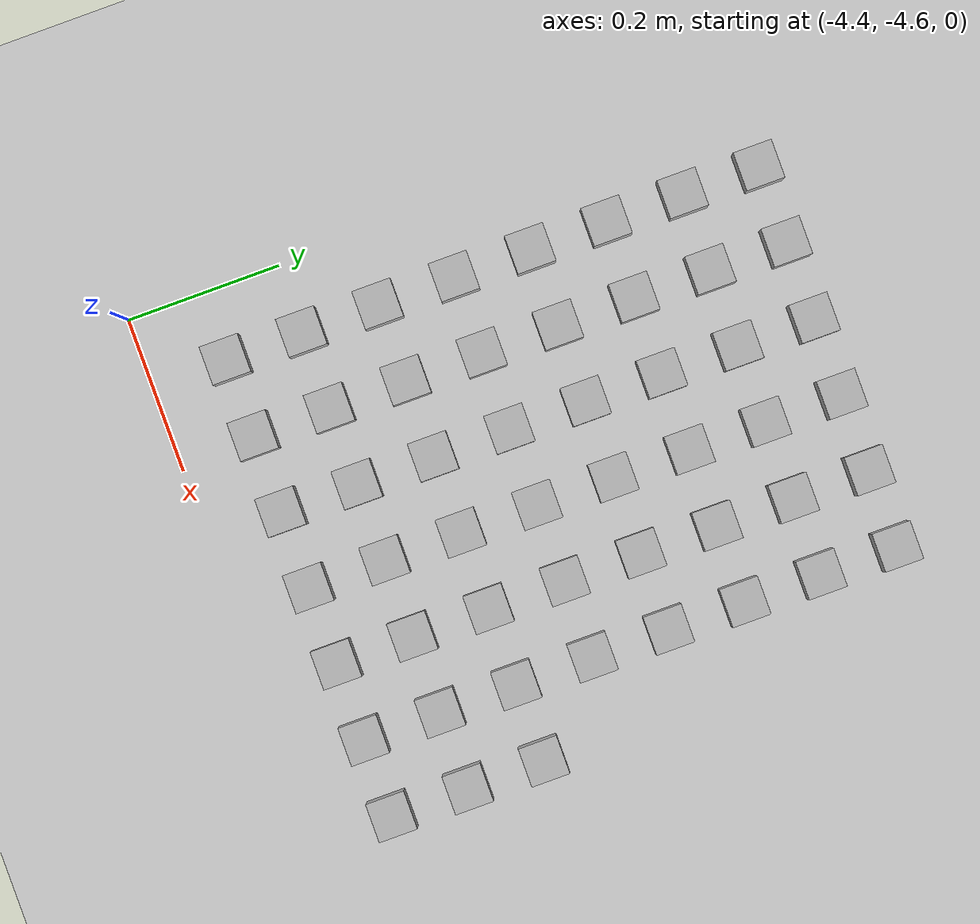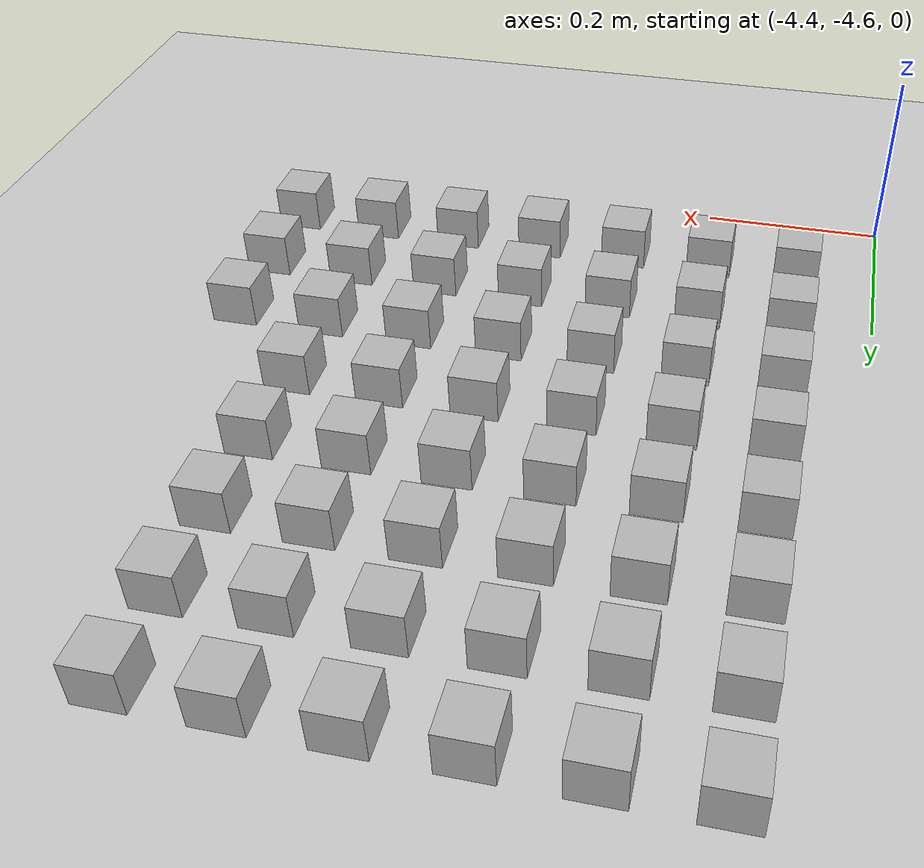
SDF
<sdf version="1.4">
 <world name="default">
  <model name="ground_plane">
   <static>1</static>
   <link name="link">
    <collision name="collision">
     <geometry><plane><normal>0 0 1</normal><size>100 100</size></plane></geometry>
     <surface><friction><ode><mu>100</mu><mu2>50</mu2></ode></friction></surface>
    </collision>
    <visual name="visual">
     <cast_shadows>0</cast_shadows>
     <geometry><plane><normal>0 0 1</normal><size>100 100</size></plane></geometry>
     <material>
      <script><uri>file://media/materials/scripts/gazebo.material</uri><name>Gazebo/Grey</name></script>
     </material>
    </visual>
    <velocity_decay><linear>0</linear><angular>0</angular></velocity_decay>
   </link>
  </model>
  <model name="at64">
   <static>0</static>
   <link name="link">
    <inertial>
     <mass>0.01</mass>
     <inertia><ixx>4e-05</ixx><ixy>0</ixy><ixz>0</ixz><iyy>4e-05</iyy><iyz>0</iyz><izz>4e-05</izz></inertia>
    </inertial>
    <visual name="visual">
     <transparency>0.1</transparency>
     <geometry><box><size>0.05 0.05 0.05</size></box></geometry>
     <material>
      <script>
       <uri>model://at0/materials/scripts</uri>
       <uri>model://at0/materials/textures</uri>
       <name>at0/Diffuse</name>
      </script>
     </material>
    </visual>
    <collision name="collision">
     <geometry><box><size>0.05 0.05 0.05</size></box></geometry>
     <surface><friction><ode><mu>0.8</mu><mu2>0.7</mu2></ode></friction></surface>
    </collision>
    <velocity_decay><linear>0</linear><angular>0</angular></velocity_decay>
   </link>
   <pose>-4.31043 -4.50066 0.024997 2.9e-05 2.9e-05 4e-06</pose>
  </model>
  <model name="at65">
   <static>0</static>
   <link name="link">
    <inertial>
     <mass>0.01</mass>
     <inertia><ixx>4e-05</ixx><ixy>0</ixy><ixz>0</ixz><iyy>4e-05</iyy><iyz>0</iyz><izz>4e-05</izz></inertia>
    </inertial>
    <visual name="visual">
     <transparency>0.1</transparency>
     <geometry><box><size>0.05 0.05 0.05</size></box></geometry>
     <material>
      <script>
       <uri>model://at0/materials/scripts</uri>
       <uri>model://at0/materials/textures</uri>
       <name>at0/Diffuse</name>
      </script>
     </material>
    </visual>
    <collision name="collision">
     <geometry><box><size>0.05 0.05 0.05</size></box></geometry>
     <surface><friction><ode><mu>0.8</mu><mu2>0.7</mu2></ode></friction></surface>
    </collision>
    <velocity_decay><linear>0</linear><angular>0</angular></velocity_decay>
   </link>
   <pose>-4.21043 -4.50066 0.024997 2.9e-05 2.9e-05 4e-06</pose>
  </model>
  <model name="at66">
   <static>0</static>
   <link name="link">
    <inertial>
     <mass>0.01</mass>
     <inertia><ixx>4e-05</ixx><ixy>0</ixy><ixz>0</ixz><iyy>4e-05</iyy><iyz>0</iyz><izz>4e-05</izz></inertia>
    </inertial>
    <visual name="visual">
     <transparency>0.1</transparency>
     <geometry><box><size>0.05 0.05 0.05</size></box></geometry>
     <material>
      <script>
       <uri>model://at0/materials/scripts</uri>
       <uri>model://at0/materials/textures</uri>
       <name>at0/Diffuse</name>
      </script>
     </material>
    </visual>
    <collision name="collision">
     <geometry><box><size>0.05 0.05 0.05</size></box></geometry>
     <surface><friction><ode><mu>0.8</mu><mu2>0.7</mu2></ode></friction></surface>
    </collision>
    <velocity_decay><linear>0</linear><angular>0</angular></velocity_decay>
   </link>
   <pose>-4.11043 -4.50066 0.024993 -2.9e-05 -2.9e-05 4e-06</pose>
  </model>
  <model name="at67">
   <static>0</static>
   <link name="link">
    <inertial>
     <mass>0.01</mass>
     <inertia><ixx>4e-05</ixx><ixy>0</ixy><ixz>0</ixz><iyy>4e-05</iyy><iyz>0</iyz><izz>4e-05</izz></inertia>
    </inertial>
    <visual name="visual">
     <transparency>0.1</transparency>
     <geometry><box><size>0.05 0.05 0.05</size></box></geometry>
     <material>
      <script>
       <uri>model://at0/materials/scripts</uri>
       <uri>model://at0/materials/textures</uri>
       <name>at0/Diffuse</name>
      </script>
     </material>
    </visual>
    <collision name="collision">
     <geometry><box><size>0.05 0.05 0.05</size></box></geometry>
     <surface><friction><ode><mu>0.8</mu><mu2>0.7</mu2></ode></friction></surface>
    </collision>
    <velocity_decay><linear>0</linear><angular>0</angular></velocity_decay>
   </link>
   <pose>-4.01043 -4.50066 0.024997 2.9e-05 2.9e-05 4e-06</pose>
  </model>
  <model name="at68">
   <static>0</static>
   <link name="link">
    <inertial>
     <mass>0.01</mass>
     <inertia><ixx>4e-05</ixx><ixy>0</ixy><ixz>0</ixz><iyy>4e-05</iyy><iyz>0</iyz><izz>4e-05</izz></inertia>
    </inertial>
    <visual name="visual">
     <transparency>0.1</transparency>
     <geometry><box><size>0.05 0.05 0.05</size></box></geometry>
     <material>
      <script>
       <uri>model://at0/materials/scripts</uri>
       <uri>model://at0/materials/textures</uri>
       <name>at0/Diffuse</name>
      </script>
     </material>
    </visual>
    <collision name="collision">
     <geometry><box><size>0.05 0.05 0.05</size></box></geometry>
     <surface><friction><ode><mu>0.8</mu><mu2>0.7</mu2></ode></friction></surface>
    </collision>
    <velocity_decay><linear>0</linear><angular>0</angular></velocity_decay>
   </link>
   <pose>-3.91043 -4.50066 0.024997 2.9e-05 2.9e-05 4e-06</pose>
  </model>
  <model name="at69">
   <static>0</static>
   <link name="link">
    <inertial>
     <mass>0.01</mass>
     <inertia><ixx>4e-05</ixx><ixy>0</ixy><ixz>0</ixz><iyy>4e-05</iyy><iyz>0</iyz><izz>4e-05</izz></inertia>
    </inertial>
    <visual name="visual">
     <transparency>0.1</transparency>
     <geometry><box><size>0.05 0.05 0.05</size></box></geometry>
     <material>
      <script>
       <uri>model://at0/materials/scripts</uri>
       <uri>model://at0/materials/textures</uri>
       <name>at0/Diffuse</name>
      </script>
     </material>
    </visual>
    <collision name="collision">
     <geometry><box><size>0.05 0.05 0.05</size></box></geometry>
     <surface><friction><ode><mu>0.8</mu><mu2>0.7</mu2></ode></friction></surface>
    </collision>
    <velocity_decay><linear>0</linear><angular>0</angular></velocity_decay>
   </link>
   <pose>-3.81043 -4.50066 0.024993 -2.9e-05 -2.9e-05 4e-06</pose>
  </model>
  <model name="at70">
   <static>0</static>
   <link name="link">
    <inertial>
     <mass>0.01</mass>
     <inertia><ixx>4e-05</ixx><ixy>0</ixy><ixz>0</ixz><iyy>4e-05</iyy><iyz>0</iyz><izz>4e-05</izz></inertia>
    </inertial>
    <visual name="visual">
     <transparency>0.1</transparency>
     <geometry><box><size>0.05 0.05 0.05</size></box></geometry>
     <material>
      <script>
       <uri>model://at0/materials/scripts</uri>
       <uri>model://at0/materials/textures</uri>
       <name>at0/Diffuse</name>
      </script>
     </material>
    </visual>
    <collision name="collision">
     <geometry><box><size>0.05 0.05 0.05</size></box></geometry>
     <surface><friction><ode><mu>0.8</mu><mu2>0.7</mu2></ode></friction></surface>
    </collision>
    <velocity_decay><linear>0</linear><angular>0</angular></velocity_decay>
   </link>
   <pose>-3.71043 -4.50066 0.024993 -2.9e-05 -2.9e-05 4e-06</pose>
  </model>
  <model name="at72">
   <static>0</static>
   <link name="link">
    <inertial>
     <mass>0.01</mass>
     <inertia><ixx>4e-05</ixx><ixy>0</ixy><ixz>0</ixz><iyy>4e-05</iyy><iyz>0</iyz><izz>4e-05</izz></inertia>
    </inertial>
    <visual name="visual">
     <transparency>0.1</transparency>
     <geometry><box><size>0.05 0.05 0.05</size></box></geometry>
     <material>
      <script>
       <uri>model://at0/materials/scripts</uri>
       <uri>model://at0/materials/textures</uri>
       <name>at0/Diffuse</name>
      </script>
     </material>
    </visual>
    <collision name="collision">
     <geometry><box><size>0.05 0.05 0.05</size></box></geometry>
     <surface><friction><ode><mu>0.8</mu><mu2>0.7</mu2></ode></friction></surface>
    </collision>
    <velocity_decay><linear>0</linear><angular>0</angular></velocity_decay>
   </link>
   <pose>-4.31043 -4.40066 0.024993 -2.9e-05 -2.9e-05 4e-06</pose>
  </model>
  <model name="at73">
   <static>0</static>
   <link name="link">
    <inertial>
     <mass>0.01</mass>
     <inertia><ixx>4e-05</ixx><ixy>0</ixy><ixz>0</ixz><iyy>4e-05</iyy><iyz>0</iyz><izz>4e-05</izz></inertia>
    </inertial>
    <visual name="visual">
     <transparency>0.1</transparency>
     <geometry><box><size>0.05 0.05 0.05</size></box></geometry>
     <material>
      <script>
       <uri>model://at0/materials/scripts</uri>
       <uri>model://at0/materials/textures</uri>
       <name>at0/Diffuse</name>
      </script>
     </material>
    </visual>
    <collision name="collision">
     <geometry><box><size>0.05 0.05 0.05</size></box></geometry>
     <surface><friction><ode><mu>0.8</mu><mu2>0.7</mu2></ode></friction></surface>
    </collision>
    <velocity_decay><linear>0</linear><angular>0</angular></velocity_decay>
   </link>
   <pose>-4.21043 -4.40066 0.024997 2.9e-05 2.9e-05 4e-06</pose>
  </model>
  <model name="at74">
   <static>0</static>
   <link name="link">
    <inertial>
     <mass>0.01</mass>
     <inertia><ixx>4e-05</ixx><ixy>0</ixy><ixz>0</ixz><iyy>4e-05</iyy><iyz>0</iyz><izz>4e-05</izz></inertia>
    </inertial>
    <visual name="visual">
     <transparency>0.1</transparency>
     <geometry><box><size>0.05 0.05 0.05</size></box></geometry>
     <material>
      <script>
       <uri>model://at0/materials/scripts</uri>
       <uri>model://at0/materials/textures</uri>
       <name>at0/Diffuse</name>
      </script>
     </material>
    </visual>
    <collision name="collision">
     <geometry><box><size>0.05 0.05 0.05</size></box></geometry>
     <surface><friction><ode><mu>0.8</mu><mu2>0.7</mu2></ode></friction></surface>
    </collision>
    <velocity_decay><linear>0</linear><angular>0</angular></velocity_decay>
   </link>
   <pose>-4.11043 -4.40066 0.024993 -2.9e-05 -2.9e-05 4e-06</pose>
  </model>
  <model name="at75">
   <static>0</static>
   <link name="link">
    <inertial>
     <mass>0.01</mass>
     <inertia><ixx>4e-05</ixx><ixy>0</ixy><ixz>0</ixz><iyy>4e-05</iyy><iyz>0</iyz><izz>4e-05</izz></inertia>
    </inertial>
    <visual name="visual">
     <transparency>0.1</transparency>
     <geometry><box><size>0.05 0.05 0.05</size></box></geometry>
     <material>
      <script>
       <uri>model://at0/materials/scripts</uri>
       <uri>model://at0/materials/textures</uri>
       <name>at0/Diffuse</name>
      </script>
     </material>
    </visual>
    <collision name="collision">
     <geometry><box><size>0.05 0.05 0.05</size></box></geometry>
     <surface><friction><ode><mu>0.8</mu><mu2>0.7</mu2></ode></friction></surface>
    </collision>
    <velocity_decay><linear>0</linear><angular>0</angular></velocity_decay>
   </link>
   <pose>-4.01043 -4.40066 0.024993 -2.9e-05 -2.9e-05 3e-06</pose>
  </model>
  <model name="at76">
   <static>0</static>
   <link name="link">
    <inertial>
     <mass>0.01</mass>
     <inertia><ixx>4e-05</ixx><ixy>0</ixy><ixz>0</ixz><iyy>4e-05</iyy><iyz>0</iyz><izz>4e-05</izz></inertia>
    </inertial>
    <visual name="visual">
     <transparency>0.1</transparency>
     <geometry><box><size>0.05 0.05 0.05</size></box></geometry>
     <material>
      <script>
       <uri>model://at0/materials/scripts</uri>
       <uri>model://at0/materials/textures</uri>
       <name>at0/Diffuse</name>
      </script>
     </material>
    </visual>
    <collision name="collision">
     <geometry><box><size>0.05 0.05 0.05</size></box></geometry>
     <surface><friction><ode><mu>0.8</mu><mu2>0.7</mu2></ode></friction></surface>
    </collision>
    <velocity_decay><linear>0</linear><angular>0</angular></velocity_decay>
   </link>
   <pose>-3.91043 -4.40066 0.024993 -2.9e-05 -2.9e-05 3e-06</pose>
  </model>
  <model name="at77">
   <static>0</static>
   <link name="link">
    <inertial>
     <mass>0.01</mass>
     <inertia><ixx>4e-05</ixx><ixy>0</ixy><ixz>0</ixz><iyy>4e-05</iyy><iyz>0</iyz><izz>4e-05</izz></inertia>
    </inertial>
    <visual name="visual">
     <transparency>0.1</transparency>
     <geometry><box><size>0.05 0.05 0.05</size></box></geometry>
     <material>
      <script>
       <uri>model://at0/materials/scripts</uri>
       <uri>model://at0/materials/textures</uri>
       <name>at0/Diffuse</name>
      </script>
     </material>
    </visual>
    <collision name="collision">
     <geometry><box><size>0.05 0.05 0.05</size></box></geometry>
     <surface><friction><ode><mu>0.8</mu><mu2>0.7</mu2></ode></friction></surface>
    </collision>
    <velocity_decay><linear>0</linear><angular>0</angular></velocity_decay>
   </link>
   <pose>-3.81043 -4.40066 0.024997 2.9e-05 2.9e-05 3e-06</pose>
  </model>
  <model name="at78">
   <static>0</static>
   <link name="link">
    <inertial>
     <mass>0.01</mass>
     <inertia><ixx>4e-05</ixx><ixy>0</ixy><ixz>0</ixz><iyy>4e-05</iyy><iyz>0</iyz><izz>4e-05</izz></inertia>
    </inertial>
    <visual name="visual">
     <transparency>0.1</transparency>
     <geometry><box><size>0.05 0.05 0.05</size></box></geometry>
     <material>
      <script>
       <uri>model://at0/materials/scripts</uri>
       <uri>model://at0/materials/textures</uri>
       <name>at0/Diffuse</name>
      </script>
     </material>
    </visual>
    <collision name="collision">
     <geometry><box><size>0.05 0.05 0.05</size></box></geometry>
     <surface><friction><ode><mu>0.8</mu><mu2>0.7</mu2></ode></friction></surface>
    </collision>
    <velocity_decay><linear>0</linear><angular>0</angular></velocity_decay>
   </link>
   <pose>-3.71043 -4.40066 0.024997 2.9e-05 2.9e-05 3e-06</pose>
  </model>
  <model name="at80">
   <static>0</static>
   <link name="link">
    <inertial>
     <mass>0.01</mass>
     <inertia><ixx>4e-05</ixx><ixy>0</ixy><ixz>0</ixz><iyy>4e-05</iyy><iyz>0</iyz><izz>4e-05</izz></inertia>
    </inertial>
    <visual name="visual">
     <transparency>0.1</transparency>
     <geometry><box><size>0.05 0.05 0.05</size></box></geometry>
     <material>
      <script>
       <uri>model://at0/materials/scripts</uri>
       <uri>model://at0/materials/textures</uri>
       <name>at0/Diffuse</name>
      </script>
     </material>
    </visual>
    <collision name="collision">
     <geometry><box><size>0.05 0.05 0.05</size></box></geometry>
     <surface><friction><ode><mu>0.8</mu><mu2>0.7</mu2></ode></friction></surface>
    </collision>
    <velocity_decay><linear>0</linear><angular>0</angular></velocity_decay>
   </link>
   <pose>-4.31043 -4.30066 0.024997 2.9e-05 2.9e-05 3e-06</pose>
  </model>
  <model name="at81">
   <static>0</static>
   <link name="link">
    <inertial>
     <mass>0.01</mass>
     <inertia><ixx>4e-05</ixx><ixy>0</ixy><ixz>0</ixz><iyy>4e-05</iyy><iyz>0</iyz><izz>4e-05</izz></inertia>
    </inertial>
    <visual name="visual">
     <transparency>0.1</transparency>
     <geometry><box><size>0.05 0.05 0.05</size></box></geometry>
     <material>
      <script>
       <uri>model://at0/materials/scripts</uri>
       <uri>model://at0/materials/textures</uri>
       <name>at0/Diffuse</name>
      </script>
     </material>
    </visual>
    <collision name="collision">
     <geometry><box><size>0.05 0.05 0.05</size></box></geometry>
     <surface><friction><ode><mu>0.8</mu><mu2>0.7</mu2></ode></friction></surface>
    </collision>
    <velocity_decay><linear>0</linear><angular>0</angular></velocity_decay>
   </link>
   <pose>-4.21043 -4.30066 0.024993 -2.9e-05 -2.9e-05 3e-06</pose>
  </model>
  <model name="at82">
   <static>0</static>
   <link name="link">
    <inertial>
     <mass>0.01</mass>
     <inertia><ixx>4e-05</ixx><ixy>0</ixy><ixz>0</ixz><iyy>4e-05</iyy><iyz>0</iyz><izz>4e-05</izz></inertia>
    </inertial>
    <visual name="visual">
     <transparency>0.1</transparency>
     <geometry><box><size>0.05 0.05 0.05</size></box></geometry>
     <material>
      <script>
       <uri>model://at0/materials/scripts</uri>
       <uri>model://at0/materials/textures</uri>
       <name>at0/Diffuse</name>
      </script>
     </material>
    </visual>
    <collision name="collision">
     <geometry><box><size>0.05 0.05 0.05</size></box></geometry>
     <surface><friction><ode><mu>0.8</mu><mu2>0.7</mu2></ode></friction></surface>
    </collision>
    <velocity_decay><linear>0</linear><angular>0</angular></velocity_decay>
   </link>
   <pose>-4.11043 -4.30066 0.024997 2.9e-05 2.9e-05 3e-06</pose>
  </model>
  <model name="at83">
   <static>0</static>
   <link name="link">
    <inertial>
     <mass>0.01</mass>
     <inertia><ixx>4e-05</ixx><ixy>0</ixy><ixz>0</ixz><iyy>4e-05</iyy><iyz>0</iyz><izz>4e-05</izz></inertia>
    </inertial>
    <visual name="visual">
     <transparency>0.1</transparency>
     <geometry><box><size>0.05 0.05 0.05</size></box></geometry>
     <material>
      <script>
       <uri>model://at0/materials/scripts</uri>
       <uri>model://at0/materials/textures</uri>
       <name>at0/Diffuse</name>
      </script>
     </material>
    </visual>
    <collision name="collision">
     <geometry><box><size>0.05 0.05 0.05</size></box></geometry>
     <surface><friction><ode><mu>0.8</mu><mu2>0.7</mu2></ode></friction></surface>
    </collision>
    <velocity_decay><linear>0</linear><angular>0</angular></velocity_decay>
   </link>
   <pose>-4.01043 -4.30066 0.024997 2.9e-05 2.9e-05 3e-06</pose>
  </model>
  <model name="at84">
   <static>0</static>
   <link name="link">
    <inertial>
     <mass>0.01</mass>
     <inertia><ixx>4e-05</ixx><ixy>0</ixy><ixz>0</ixz><iyy>4e-05</iyy><iyz>0</iyz><izz>4e-05</izz></inertia>
    </inertial>
    <visual name="visual">
     <transparency>0.1</transparency>
     <geometry><box><size>0.05 0.05 0.05</size></box></geometry>
     <material>
      <script>
       <uri>model://at0/materials/scripts</uri>
       <uri>model://at0/materials/textures</uri>
       <name>at0/Diffuse</name>
      </script>
     </material>
    </visual>
    <collision name="collision">
     <geometry><box><size>0.05 0.05 0.05</size></box></geometry>
     <surface><friction><ode><mu>0.8</mu><mu2>0.7</mu2></ode></friction></surface>
    </collision>
    <velocity_decay><linear>0</linear><angular>0</angular></velocity_decay>
   </link>
   <pose>-3.91043 -4.30066 0.024997 2.9e-05 2.9e-05 3e-06</pose>
  </model>
  <model name="at85">
   <static>0</static>
   <link name="link">
    <inertial>
     <mass>0.01</mass>
     <inertia><ixx>4e-05</ixx><ixy>0</ixy><ixz>0</ixz><iyy>4e-05</iyy><iyz>0</iyz><izz>4e-05</izz></inertia>
    </inertial>
    <visual name="visual">
     <transparency>0.1</transparency>
     <geometry><box><size>0.05 0.05 0.05</size></box></geometry>
     <material>
      <script>
       <uri>model://at0/materials/scripts</uri>
       <uri>model://at0/materials/textures</uri>
       <name>at0/Diffuse</name>
      </script>
     </material>
    </visual>
    <collision name="collision">
     <geometry><box><size>0.05 0.05 0.05</size></box></geometry>
     <surface><friction><ode><mu>0.8</mu><mu2>0.7</mu2></ode></friction></surface>
    </collision>
    <velocity_decay><linear>0</linear><angular>0</angular></velocity_decay>
   </link>
   <pose>-3.81043 -4.30066 0.024993 -2.9e-05 -2.9e-05 3e-06</pose>
  </model>
  <model name="at86">
   <static>0</static>
   <link name="link">
    <inertial>
     <mass>0.01</mass>
     <inertia><ixx>4e-05</ixx><ixy>0</ixy><ixz>0</ixz><iyy>4e-05</iyy><iyz>0</iyz><izz>4e-05</izz></inertia>
    </inertial>
    <visual name="visual">
     <transparency>0.1</transparency>
     <geometry><box><size>0.05 0.05 0.05</size></box></geometry>
     <material>
      <script>
       <uri>model://at0/materials/scripts</uri>
       <uri>model://at0/materials/textures</uri>
       <name>at0/Diffuse</name>
      </script>
     </material>
    </visual>
    <collision name="collision">
     <geometry><box><size>0.05 0.05 0.05</size></box></geometry>
     <surface><friction><ode><mu>0.8</mu><mu2>0.7</mu2></ode></friction></surface>
    </collision>
    <velocity_decay><linear>0</linear><angular>0</angular></velocity_decay>
   </link>
   <pose>-3.71043 -4.30066 0.024993 -2.9e-05 -2.9e-05 3e-06</pose>
  </model>
  <model name="at88">
   <static>0</static>
   <link name="link">
    <inertial>
     <mass>0.01</mass>
     <inertia><ixx>4e-05</ixx><ixy>0</ixy><ixz>0</ixz><iyy>4e-05</iyy><iyz>0</iyz><izz>4e-05</izz></inertia>
    </inertial>
    <visual name="visual">
     <transparency>0.1</transparency>
     <geometry><box><size>0.05 0.05 0.05</size></box></geometry>
     <material>
      <script>
       <uri>model://at0/materials/scripts</uri>
       <uri>model://at0/materials/textures</uri>
       <name>at0/Diffuse</name>
      </script>
     </material>
    </visual>
    <collision name="collision">
     <geometry><box><size>0.05 0.05 0.05</size></box></geometry>
     <surface><friction><ode><mu>0.8</mu><mu2>0.7</mu2></ode></friction></surface>
    </collision>
    <velocity_decay><linear>0</linear><angular>0</angular></velocity_decay>
   </link>
   <pose>-4.31043 -4.20066 0.024993 -2.9e-05 -2.9e-05 3e-06</pose>
  </model>
  <model name="at89">
   <static>0</static>
   <link name="link">
    <inertial>
     <mass>0.01</mass>
     <inertia><ixx>4e-05</ixx><ixy>0</ixy><ixz>0</ixz><iyy>4e-05</iyy><iyz>0</iyz><izz>4e-05</izz></inertia>
    </inertial>
    <visual name="visual">
     <transparency>0.1</transparency>
     <geometry><box><size>0.05 0.05 0.05</size></box></geometry>
     <material>
      <script>
       <uri>model://at0/materials/scripts</uri>
       <uri>model://at0/materials/textures</uri>
       <name>at0/Diffuse</name>
      </script>
     </material>
    </visual>
    <collision name="collision">
     <geometry><box><size>0.05 0.05 0.05</size></box></geometry>
     <surface><friction><ode><mu>0.8</mu><mu2>0.7</mu2></ode></friction></surface>
    </collision>
    <velocity_decay><linear>0</linear><angular>0</angular></velocity_decay>
   </link>
   <pose>-4.21043 -4.20066 0.024997 2.9e-05 2.9e-05 3e-06</pose>
  </model>
  <model name="at90">
   <static>0</static>
   <link name="link">
    <inertial>
     <mass>0.01</mass>
     <inertia><ixx>4e-05</ixx><ixy>0</ixy><ixz>0</ixz><iyy>4e-05</iyy><iyz>0</iyz><izz>4e-05</izz></inertia>
    </inertial>
    <visual name="visual">
     <transparency>0.1</transparency>
     <geometry><box><size>0.05 0.05 0.05</size></box></geometry>
     <material>
      <script>
       <uri>model://at0/materials/scripts</uri>
       <uri>model://at0/materials/textures</uri>
       <name>at0/Diffuse</name>
      </script>
     </material>
    </visual>
    <collision name="collision">
     <geometry><box><size>0.05 0.05 0.05</size></box></geometry>
     <surface><friction><ode><mu>0.8</mu><mu2>0.7</mu2></ode></friction></surface>
    </collision>
    <velocity_decay><linear>0</linear><angular>0</angular></velocity_decay>
   </link>
   <pose>-4.11043 -4.20066 0.024997 2.9e-05 2.9e-05 3e-06</pose>
  </model>
  <model name="at91">
   <static>0</static>
   <link name="link">
    <inertial>
     <mass>0.01</mass>
     <inertia><ixx>4e-05</ixx><ixy>0</ixy><ixz>0</ixz><iyy>4e-05</iyy><iyz>0</iyz><izz>4e-05</izz></inertia>
    </inertial>
    <visual name="visual">
     <transparency>0.1</transparency>
     <geometry><box><size>0.05 0.05 0.05</size></box></geometry>
     <material>
      <script>
       <uri>model://at0/materials/scripts</uri>
       <uri>model://at0/materials/textures</uri>
       <name>at0/Diffuse</name>
      </script>
     </material>
    </visual>
    <collision name="collision">
     <geometry><box><size>0.05 0.05 0.05</size></box></geometry>
     <surface><friction><ode><mu>0.8</mu><mu2>0.7</mu2></ode></friction></surface>
    </collision>
    <velocity_decay><linear>0</linear><angular>0</angular></velocity_decay>
   </link>
   <pose>-4.01043 -4.20066 0.024997 2.9e-05 2.9e-05 3e-06</pose>
  </model>
  <model name="at92">
   <static>0</static>
   <link name="link">
    <inertial>
     <mass>0.01</mass>
     <inertia><ixx>4e-05</ixx><ixy>0</ixy><ixz>0</ixz><iyy>4e-05</iyy><iyz>0</iyz><izz>4e-05</izz></inertia>
    </inertial>
    <visual name="visual">
     <transparency>0.1</transparency>
     <geometry><box><size>0.05 0.05 0.05</size></box></geometry>
     <material>
      <script>
       <uri>model://at0/materials/scripts</uri>
       <uri>model://at0/materials/textures</uri>
       <name>at0/Diffuse</name>
      </script>
     </material>
    </visual>
    <collision name="collision">
     <geometry><box><size>0.05 0.05 0.05</size></box></geometry>
     <surface><friction><ode><mu>0.8</mu><mu2>0.7</mu2></ode></friction></surface>
    </collision>
    <velocity_decay><linear>0</linear><angular>0</angular></velocity_decay>
   </link>
   <pose>-3.91043 -4.20066 0.024993 -2.9e-05 -2.9e-05 3e-06</pose>
  </model>
  <model name="at93">
   <static>0</static>
   <link name="link">
    <inertial>
     <mass>0.01</mass>
     <inertia><ixx>4e-05</ixx><ixy>0</ixy><ixz>0</ixz><iyy>4e-05</iyy><iyz>0</iyz><izz>4e-05</izz></inertia>
    </inertial>
    <visual name="visual">
     <transparency>0.1</transparency>
     <geometry><box><size>0.05 0.05 0.05</size></box></geometry>
     <material>
      <script>
       <uri>model://at0/materials/scripts</uri>
       <uri>model://at0/materials/textures</uri>
       <name>at0/Diffuse</name>
      </script>
     </material>
    </visual>
    <collision name="collision">
     <geometry><box><size>0.05 0.05 0.05</size></box></geometry>
     <surface><friction><ode><mu>0.8</mu><mu2>0.7</mu2></ode></friction></surface>
    </collision>
    <velocity_decay><linear>0</linear><angular>0</angular></velocity_decay>
   </link>
   <pose>-3.81043 -4.20066 0.024997 2.9e-05 2.9e-05 3e-06</pose>
  </model>
  <model name="at96">
   <static>0</static>
   <link name="link">
    <inertial>
     <mass>0.01</mass>
     <inertia><ixx>4e-05</ixx><ixy>0</ixy><ixz>0</ixz><iyy>4e-05</iyy><iyz>0</iyz><izz>4e-05</izz></inertia>
    </inertial>
    <visual name="visual">
     <transparency>0.1</transparency>
     <geometry><box><size>0.05 0.05 0.05</size></box></geometry>
     <material>
      <script>
       <uri>model://at0/materials/scripts</uri>
       <uri>model://at0/materials/textures</uri>
       <name>at0/Diffuse</name>
      </script>
     </material>
    </visual>
    <collision name="collision">
     <geometry><box><size>0.05 0.05 0.05</size></box></geometry>
     <surface><friction><ode><mu>0.8</mu><mu2>0.7</mu2></ode></friction></surface>
    </collision>
    <velocity_decay><linear>0</linear><angular>0</angular></velocity_decay>
   </link>
   <pose>-4.31043 -4.10066 0.024993 -2.9e-05 -2.9e-05 3e-06</pose>
  </model>
  <model name="at97">
   <static>0</static>
   <link name="link">
    <inertial>
     <mass>0.01</mass>
     <inertia><ixx>4e-05</ixx><ixy>0</ixy><ixz>0</ixz><iyy>4e-05</iyy><iyz>0</iyz><izz>4e-05</izz></inertia>
    </inertial>
    <visual name="visual">
     <transparency>0.1</transparency>
     <geometry><box><size>0.05 0.05 0.05</size></box></geometry>
     <material>
      <script>
       <uri>model://at0/materials/scripts</uri>
       <uri>model://at0/materials/textures</uri>
       <name>at0/Diffuse</name>
      </script>
     </material>
    </visual>
    <collision name="collision">
     <geometry><box><size>0.05 0.05 0.05</size></box></geometry>
     <surface><friction><ode><mu>0.8</mu><mu2>0.7</mu2></ode></friction></surface>
    </collision>
    <velocity_decay><linear>0</linear><angular>0</angular></velocity_decay>
   </link>
   <pose>-4.21043 -4.10066 0.024997 2.9e-05 2.9e-05 3e-06</pose>
  </model>
  <model name="at98">
   <static>0</static>
   <link name="link">
    <inertial>
     <mass>0.01</mass>
     <inertia><ixx>4e-05</ixx><ixy>0</ixy><ixz>0</ixz><iyy>4e-05</iyy><iyz>0</iyz><izz>4e-05</izz></inertia>
    </inertial>
    <visual name="visual">
     <transparency>0.1</transparency>
     <geometry><box><size>0.05 0.05 0.05</size></box></geometry>
     <material>
      <script>
       <uri>model://at0/materials/scripts</uri>
       <uri>model://at0/materials/textures</uri>
       <name>at0/Diffuse</name>
      </script>
     </material>
    </visual>
    <collision name="collision">
     <geometry><box><size>0.05 0.05 0.05</size></box></geometry>
     <surface><friction><ode><mu>0.8</mu><mu2>0.7</mu2></ode></friction></surface>
    </collision>
    <velocity_decay><linear>0</linear><angular>0</angular></velocity_decay>
   </link>
   <pose>-4.11043 -4.10066 0.024997 2.9e-05 2.9e-05 3e-06</pose>
  </model>
  <model name="at99">
   <static>0</static>
   <link name="link">
    <inertial>
     <mass>0.01</mass>
     <inertia><ixx>4e-05</ixx><ixy>0</ixy><ixz>0</ixz><iyy>4e-05</iyy><iyz>0</iyz><izz>4e-05</izz></inertia>
    </inertial>
    <visual name="visual">
     <transparency>0.1</transparency>
     <geometry><box><size>0.05 0.05 0.05</size></box></geometry>
     <material>
      <script>
       <uri>model://at0/materials/scripts</uri>
       <uri>model://at0/materials/textures</uri>
       <name>at0/Diffuse</name>
      </script>
     </material>
    </visual>
    <collision name="collision">
     <geometry><box><size>0.05 0.05 0.05</size></box></geometry>
     <surface><friction><ode><mu>0.8</mu><mu2>0.7</mu2></ode></friction></surface>
    </collision>
    <velocity_decay><linear>0</linear><angular>0</angular></velocity_decay>
   </link>
   <pose>-4.01043 -4.10066 0.024997 2.9e-05 2.9e-05 3e-06</pose>
  </model>
  <model name="at100">
   <static>0</static>
   <link name="link">
    <inertial>
     <mass>0.01</mass>
     <inertia><ixx>4e-05</ixx><ixy>0</ixy><ixz>0</ixz><iyy>4e-05</iyy><iyz>0</iyz><izz>4e-05</izz></inertia>
    </inertial>
    <visual name="visual">
     <transparency>0.1</transparency>
     <geometry><box><size>0.05 0.05 0.05</size></box></geometry>
     <material>
      <script>
       <uri>model://at0/materials/scripts</uri>
       <uri>model://at0/materials/textures</uri>
       <name>at0/Diffuse</name>
      </script>
     </material>
    </visual>
    <collision name="collision">
     <geometry><box><size>0.05 0.05 0.05</size></box></geometry>
     <surface><friction><ode><mu>0.8</mu><mu2>0.7</mu2></ode></friction></surface>
    </collision>
    <velocity_decay><linear>0</linear><angular>0</angular></velocity_decay>
   </link>
   <pose>-3.91043 -4.10066 0.024997 2.9e-05 2.9e-05 3e-06</pose>
  </model>
  <model name="at101">
   <static>0</static>
   <link name="link">
    <inertial>
     <mass>0.01</mass>
     <inertia><ixx>4e-05</ixx><ixy>0</ixy><ixz>0</ixz><iyy>4e-05</iyy><iyz>0</iyz><izz>4e-05</izz></inertia>
    </inertial>
    <visual name="visual">
     <transparency>0.1</transparency>
     <geometry><box><size>0.05 0.05 0.05</size></box></geometry>
     <material>
      <script>
       <uri>model://at0/materials/scripts</uri>
       <uri>model://at0/materials/textures</uri>
       <name>at0/Diffuse</name>
      </script>
     </material>
    </visual>
    <collision name="collision">
     <geometry><box><size>0.05 0.05 0.05</size></box></geometry>
     <surface><friction><ode><mu>0.8</mu><mu2>0.7</mu2></ode></friction></surface>
    </collision>
    <velocity_decay><linear>0</linear><angular>0</angular></velocity_decay>
   </link>
   <pose>-3.81043 -4.10066 0.024993 -2.9e-05 -2.9e-05 3e-06</pose>
  </model>
  <model name="at104">
   <static>0</static>
   <link name="link">
    <inertial>
     <mass>0.01</mass>
     <inertia><ixx>4e-05</ixx><ixy>0</ixy><ixz>0</ixz><iyy>4e-05</iyy><iyz>0</iyz><izz>4e-05</izz></inertia>
    </inertial>
    <visual name="visual">
     <transparency>0.1</transparency>
     <geometry><box><size>0.05 0.05 0.05</size></box></geometry>
     <material>
      <script>
       <uri>model://at0/materials/scripts</uri>
       <uri>model://at0/materials/textures</uri>
       <name>at0/Diffuse</name>
      </script>
     </material>
    </visual>
    <collision name="collision">
     <geometry><box><size>0.05 0.05 0.05</size></box></geometry>
     <surface><friction><ode><mu>0.8</mu><mu2>0.7</mu2></ode></friction></surface>
    </collision>
    <velocity_decay><linear>0</linear><angular>0</angular></velocity_decay>
   </link>
   <pose>-4.31043 -4.00066 0.024997 2.9e-05 2.9e-05 3e-06</pose>
  </model>
  <model name="at105">
   <static>0</static>
   <link name="link">
    <inertial>
     <mass>0.01</mass>
     <inertia><ixx>4e-05</ixx><ixy>0</ixy><ixz>0</ixz><iyy>4e-05</iyy><iyz>0</iyz><izz>4e-05</izz></inertia>
    </inertial>
    <visual name="visual">
     <transparency>0.1</transparency>
     <geometry><box><size>0.05 0.05 0.05</size></box></geometry>
     <material>
      <script>
       <uri>model://at0/materials/scripts</uri>
       <uri>model://at0/materials/textures</uri>
       <name>at0/Diffuse</name>
      </script>
     </material>
    </visual>
    <collision name="collision">
     <geometry><box><size>0.05 0.05 0.05</size></box></geometry>
     <surface><friction><ode><mu>0.8</mu><mu2>0.7</mu2></ode></friction></surface>
    </collision>
    <velocity_decay><linear>0</linear><angular>0</angular></velocity_decay>
   </link>
   <pose>-4.21043 -4.00066 0.024993 -2.9e-05 -2.9e-05 3e-06</pose>
  </model>
  <model name="at106">
   <static>0</static>
   <link name="link">
    <inertial>
     <mass>0.01</mass>
     <inertia><ixx>4e-05</ixx><ixy>0</ixy><ixz>0</ixz><iyy>4e-05</iyy><iyz>0</iyz><izz>4e-05</izz></inertia>
    </inertial>
    <visual name="visual">
     <transparency>0.1</transparency>
     <geometry><box><size>0.05 0.05 0.05</size></box></geometry>
     <material>
      <script>
       <uri>model://at0/materials/scripts</uri>
       <uri>model://at0/materials/textures</uri>
       <name>at0/Diffuse</name>
      </script>
     </material>
    </visual>
    <collision name="collision">
     <geometry><box><size>0.05 0.05 0.05</size></box></geometry>
     <surface><friction><ode><mu>0.8</mu><mu2>0.7</mu2></ode></friction></surface>
    </collision>
    <velocity_decay><linear>0</linear><angular>0</angular></velocity_decay>
   </link>
   <pose>-4.11043 -4.00066 0.024997 2.9e-05 2.9e-05 3e-06</pose>
  </model>
  <model name="at107">
   <static>0</static>
   <link name="link">
    <inertial>
     <mass>0.01</mass>
     <inertia><ixx>4e-05</ixx><ixy>0</ixy><ixz>0</ixz><iyy>4e-05</iyy><iyz>0</iyz><izz>4e-05</izz></inertia>
    </inertial>
    <visual name="visual">
     <transparency>0.1</transparency>
     <geometry><box><size>0.05 0.05 0.05</size></box></geometry>
     <material>
      <script>
       <uri>model://at0/materials/scripts</uri>
       <uri>model://at0/materials/textures</uri>
       <name>at0/Diffuse</name>
      </script>
     </material>
    </visual>
    <collision name="collision">
     <geometry><box><size>0.05 0.05 0.05</size></box></geometry>
     <surface><friction><ode><mu>0.8</mu><mu2>0.7</mu2></ode></friction></surface>
    </collision>
    <velocity_decay><linear>0</linear><angular>0</angular></velocity_decay>
   </link>
   <pose>-4.01043 -4.00066 0.024997 2.9e-05 2.9e-05 3e-06</pose>
  </model>
  <model name="at108">
   <static>0</static>
   <link name="link">
    <inertial>
     <mass>0.01</mass>
     <inertia><ixx>4e-05</ixx><ixy>0</ixy><ixz>0</ixz><iyy>4e-05</iyy><iyz>0</iyz><izz>4e-05</izz></inertia>
    </inertial>
    <visual name="visual">
     <transparency>0.1</transparency>
     <geometry><box><size>0.05 0.05 0.05</size></box></geometry>
     <material>
      <script>
       <uri>model://at0/materials/scripts</uri>
       <uri>model://at0/materials/textures</uri>
       <name>at0/Diffuse</name>
      </script>
     </material>
    </visual>
    <collision name="collision">
     <geometry><box><size>0.05 0.05 0.05</size></box></geometry>
     <surface><friction><ode><mu>0.8</mu><mu2>0.7</mu2></ode></friction></surface>
    </collision>
    <velocity_decay><linear>0</linear><angular>0</angular></velocity_decay>
   </link>
   <pose>-3.91043 -4.00066 0.024993 -2.9e-05 -2.9e-05 3e-06</pose>
  </model>
  <model name="at109">
   <static>0</static>
   <link name="link">
    <inertial>
     <mass>0.01</mass>
     <inertia><ixx>4e-05</ixx><ixy>0</ixy><ixz>0</ixz><iyy>4e-05</iyy><iyz>0</iyz><izz>4e-05</izz></inertia>
    </inertial>
    <visual name="visual">
     <transparency>0.1</transparency>
     <geometry><box><size>0.05 0.05 0.05</size></box></geometry>
     <material>
      <script>
       <uri>model://at0/materials/scripts</uri>
       <uri>model://at0/materials/textures</uri>
       <name>at0/Diffuse</name>
      </script>
     </material>
    </visual>
    <collision name="collision">
     <geometry><box><size>0.05 0.05 0.05</size></box></geometry>
     <surface><friction><ode><mu>0.8</mu><mu2>0.7</mu2></ode></friction></surface>
    </collision>
    <velocity_decay><linear>0</linear><angular>0</angular></velocity_decay>
   </link>
   <pose>-3.81043 -4.00066 0.024993 -2.9e-05 -2.9e-05 3e-06</pose>
  </model>
  <model name="at112">
   <static>0</static>
   <link name="link">
    <inertial>
     <mass>0.01</mass>
     <inertia><ixx>4e-05</ixx><ixy>0</ixy><ixz>0</ixz><iyy>4e-05</iyy><iyz>0</iyz><izz>4e-05</izz></inertia>
    </inertial>
    <visual name="visual">
     <transparency>0.1</transparency>
     <geometry><box><size>0.05 0.05 0.05</size></box></geometry>
     <material>
      <script>
       <uri>model://at0/materials/scripts</uri>
       <uri>model://at0/materials/textures</uri>
       <name>at0/Diffuse</name>
      </script>
     </material>
    </visual>
    <collision name="collision">
     <geometry><box><size>0.05 0.05 0.05</size></box></geometry>
     <surface><friction><ode><mu>0.8</mu><mu2>0.7</mu2></ode></friction></surface>
    </collision>
    <velocity_decay><linear>0</linear><angular>0</angular></velocity_decay>
   </link>
   <pose>-4.31043 -3.90066 0.024993 -2.9e-05 -2.9e-05 2e-06</pose>
  </model>
  <model name="at113">
   <static>0</static>
   <link name="link">
    <inertial>
     <mass>0.01</mass>
     <inertia><ixx>4e-05</ixx><ixy>0</ixy><ixz>0</ixz><iyy>4e-05</iyy><iyz>0</iyz><izz>4e-05</izz></inertia>
    </inertial>
    <visual name="visual">
     <transparency>0.1</transparency>
     <geometry><box><size>0.05 0.05 0.05</size></box></geometry>
     <material>
      <script>
       <uri>model://at0/materials/scripts</uri>
       <uri>model://at0/materials/textures</uri>
       <name>at0/Diffuse</name>
      </script>
     </material>
    </visual>
    <collision name="collision">
     <geometry><box><size>0.05 0.05 0.05</size></box></geometry>
     <surface><friction><ode><mu>0.8</mu><mu2>0.7</mu2></ode></friction></surface>
    </collision>
    <velocity_decay><linear>0</linear><angular>0</angular></velocity_decay>
   </link>
   <pose>-4.21043 -3.90066 0.024993 -2.9e-05 -2.9e-05 2e-06</pose>
  </model>
  <model name="at114">
   <static>0</static>
   <link name="link">
    <inertial>
     <mass>0.01</mass>
     <inertia><ixx>4e-05</ixx><ixy>0</ixy><ixz>0</ixz><iyy>4e-05</iyy><iyz>0</iyz><izz>4e-05</izz></inertia>
    </inertial>
    <visual name="visual">
     <transparency>0.1</transparency>
     <geometry><box><size>0.05 0.05 0.05</size></box></geometry>
     <material>
      <script>
       <uri>model://at0/materials/scripts</uri>
       <uri>model://at0/materials/textures</uri>
       <name>at0/Diffuse</name>
      </script>
     </material>
    </visual>
    <collision name="collision">
     <geometry><box><size>0.05 0.05 0.05</size></box></geometry>
     <surface><friction><ode><mu>0.8</mu><mu2>0.7</mu2></ode></friction></surface>
    </collision>
    <velocity_decay><linear>0</linear><angular>0</angular></velocity_decay>
   </link>
   <pose>-4.11043 -3.90066 0.024993 -2.9e-05 -2.9e-05 2e-06</pose>
  </model>
  <model name="at115">
   <static>0</static>
   <link name="link">
    <inertial>
     <mass>0.01</mass>
     <inertia><ixx>4e-05</ixx><ixy>0</ixy><ixz>0</ixz><iyy>4e-05</iyy><iyz>0</iyz><izz>4e-05</izz></inertia>
    </inertial>
    <visual name="visual">
     <transparency>0.1</transparency>
     <geometry><box><size>0.05 0.05 0.05</size></box></geometry>
     <material>
      <script>
       <uri>model://at0/materials/scripts</uri>
       <uri>model://at0/materials/textures</uri>
       <name>at0/Diffuse</name>
      </script>
     </material>
    </visual>
    <collision name="collision">
     <geometry><box><size>0.05 0.05 0.05</size></box></geometry>
     <surface><friction><ode><mu>0.8</mu><mu2>0.7</mu2></ode></friction></surface>
    </collision>
    <velocity_decay><linear>0</linear><angular>0</angular></velocity_decay>
   </link>
   <pose>-4.01043 -3.90066 0.024997 2.9e-05 2.9e-05 2e-06</pose>
  </model>
  <model name="at116">
   <static>0</static>
   <link name="link">
    <inertial>
     <mass>0.01</mass>
     <inertia><ixx>4e-05</ixx><ixy>0</ixy><ixz>0</ixz><iyy>4e-05</iyy><iyz>0</iyz><izz>4e-05</izz></inertia>
    </inertial>
    <visual name="visual">
     <transparency>0.1</transparency>
     <geometry><box><size>0.05 0.05 0.05</size></box></geometry>
     <material>
      <script>
       <uri>model://at0/materials/scripts</uri>
       <uri>model://at0/materials/textures</uri>
       <name>at0/Diffuse</name>
      </script>
     </material>
    </visual>
    <collision name="collision">
     <geometry><box><size>0.05 0.05 0.05</size></box></geometry>
     <surface><friction><ode><mu>0.8</mu><mu2>0.7</mu2></ode></friction></surface>
    </collision>
    <velocity_decay><linear>0</linear><angular>0</angular></velocity_decay>
   </link>
   <pose>-3.91043 -3.90066 0.024993 -2.9e-05 -2.9e-05 2e-06</pose>
  </model>
  <model name="at117">
   <static>0</static>
   <link name="link">
    <inertial>
     <mass>0.01</mass>
     <inertia><ixx>4e-05</ixx><ixy>0</ixy><ixz>0</ixz><iyy>4e-05</iyy><iyz>0</iyz><izz>4e-05</izz></inertia>
    </inertial>
    <visual name="visual">
     <transparency>0.1</transparency>
     <geometry><box><size>0.05 0.05 0.05</size></box></geometry>
     <material>
      <script>
       <uri>model://at0/materials/scripts</uri>
       <uri>model://at0/materials/textures</uri>
       <name>at0/Diffuse</name>
      </script>
     </material>
    </visual>
    <collision name="collision">
     <geometry><box><size>0.05 0.05 0.05</size></box></geometry>
     <surface><friction><ode><mu>0.8</mu><mu2>0.7</mu2></ode></friction></surface>
    </collision>
    <velocity_decay><linear>0</linear><angular>0</angular></velocity_decay>
   </link>
   <pose>-3.81043 -3.90066 0.024997 2.9e-05 2.9e-05 2e-06</pose>
  </model>
  <model name="at120">
   <static>0</static>
   <link name="link">
    <inertial>
     <mass>0.01</mass>
     <inertia><ixx>4e-05</ixx><ixy>0</ixy><ixz>0</ixz><iyy>4e-05</iyy><iyz>0</iyz><izz>4e-05</izz></inertia>
    </inertial>
    <visual name="visual">
     <transparency>0.1</transparency>
     <geometry><box><size>0.05 0.05 0.05</size></box></geometry>
     <material>
      <script>
       <uri>model://at0/materials/scripts</uri>
       <uri>model://at0/materials/textures</uri>
       <name>at0/Diffuse</name>
      </script>
     </material>
    </visual>
    <collision name="collision">
     <geometry><box><size>0.05 0.05 0.05</size></box></geometry>
     <surface><friction><ode><mu>0.8</mu><mu2>0.7</mu2></ode></friction></surface>
    </collision>
    <velocity_decay><linear>0</linear><angular>0</angular></velocity_decay>
   </link>
   <pose>-4.31043 -3.80066 0.024997 2.9e-05 2.9e-05 2e-06</pose>
  </model>
  <model name="at121">
   <static>0</static>
   <link name="link">
    <inertial>
     <mass>0.01</mass>
     <inertia><ixx>4e-05</ixx><ixy>0</ixy><ixz>0</ixz><iyy>4e-05</iyy><iyz>0</iyz><izz>4e-05</izz></inertia>
    </inertial>
    <visual name="visual">
     <transparency>0.1</transparency>
     <geometry><box><size>0.05 0.05 0.05</size></box></geometry>
     <material>
      <script>
       <uri>model://at0/materials/scripts</uri>
       <uri>model://at0/materials/textures</uri>
       <name>at0/Diffuse</name>
      </script>
     </material>
    </visual>
    <collision name="collision">
     <geometry><box><size>0.05 0.05 0.05</size></box></geometry>
     <surface><friction><ode><mu>0.8</mu><mu2>0.7</mu2></ode></friction></surface>
    </collision>
    <velocity_decay><linear>0</linear><angular>0</angular></velocity_decay>
   </link>
   <pose>-4.21043 -3.80066 0.024997 2.9e-05 2.9e-05 2e-06</pose>
  </model>
  <model name="at122">
   <static>0</static>
   <link name="link">
    <inertial>
     <mass>0.01</mass>
     <inertia><ixx>4e-05</ixx><ixy>0</ixy><ixz>0</ixz><iyy>4e-05</iyy><iyz>0</iyz><izz>4e-05</izz></inertia>
    </inertial>
    <visual name="visual">
     <transparency>0.1</transparency>
     <geometry><box><size>0.05 0.05 0.05</size></box></geometry>
     <material>
      <script>
       <uri>model://at0/materials/scripts</uri>
       <uri>model://at0/materials/textures</uri>
       <name>at0/Diffuse</name>
      </script>
     </material>
    </visual>
    <collision name="collision">
     <geometry><box><size>0.05 0.05 0.05</size></box></geometry>
     <surface><friction><ode><mu>0.8</mu><mu2>0.7</mu2></ode></friction></surface>
    </collision>
    <velocity_decay><linear>0</linear><angular>0</angular></velocity_decay>
   </link>
   <pose>-4.11043 -3.80066 0.024993 -2.9e-05 -2.9e-05 2e-06</pose>
  </model>
  <model name="at123">
   <static>0</static>
   <link name="link">
    <inertial>
     <mass>0.01</mass>
     <inertia><ixx>4e-05</ixx><ixy>0</ixy><ixz>0</ixz><iyy>4e-05</iyy><iyz>0</iyz><izz>4e-05</izz></inertia>
    </inertial>
    <visual name="visual">
     <transparency>0.1</transparency>
     <geometry><box><size>0.05 0.05 0.05</size></box></geometry>
     <material>
      <script>
       <uri>model://at0/materials/scripts</uri>
       <uri>model://at0/materials/textures</uri>
       <name>at0/Diffuse</name>
      </script>
     </material>
    </visual>
    <collision name="collision">
     <geometry><box><size>0.05 0.05 0.05</size></box></geometry>
     <surface><friction><ode><mu>0.8</mu><mu2>0.7</mu2></ode></friction></surface>
    </collision>
    <velocity_decay><linear>0</linear><angular>0</angular></velocity_decay>
   </link>
   <pose>-4.01043 -3.80066 0.024993 -2.9e-05 -2.9e-05 2e-06</pose>
  </model>
  <model name="at124">
   <static>0</static>
   <link name="link">
    <inertial>
     <mass>0.01</mass>
     <inertia><ixx>4e-05</ixx><ixy>0</ixy><ixz>0</ixz><iyy>4e-05</iyy><iyz>0</iyz><izz>4e-05</izz></inertia>
    </inertial>
    <visual name="visual">
     <transparency>0.1</transparency>
     <geometry><box><size>0.05 0.05 0.05</size></box></geometry>
     <material>
      <script>
       <uri>model://at0/materials/scripts</uri>
       <uri>model://at0/materials/textures</uri>
       <name>at0/Diffuse</name>
      </script>
     </material>
    </visual>
    <collision name="collision">
     <geometry><box><size>0.05 0.05 0.05</size></box></geometry>
     <surface><friction><ode><mu>0.8</mu><mu2>0.7</mu2></ode></friction></surface>
    </collision>
    <velocity_decay><linear>0</linear><angular>0</angular></velocity_decay>
   </link>
   <pose>-3.91043 -3.80066 0.024997 2.9e-05 2.9e-05 2e-06</pose>
  </model>
  <model name="at125">
   <static>0</static>
   <link name="link">
    <inertial>
     <mass>0.01</mass>
     <inertia><ixx>4e-05</ixx><ixy>0</ixy><ixz>0</ixz><iyy>4e-05</iyy><iyz>0</iyz><izz>4e-05</izz></inertia>
    </inertial>
    <visual name="visual">
     <transparency>0.1</transparency>
     <geometry><box><size>0.05 0.05 0.05</size></box></geometry>
     <material>
      <script>
       <uri>model://at0/materials/scripts</uri>
       <uri>model://at0/materials/textures</uri>
       <name>at0/Diffuse</name>
      </script>
     </material>
    </visual>
    <collision name="collision">
     <geometry><box><size>0.05 0.05 0.05</size></box></geometry>
     <surface><friction><ode><mu>0.8</mu><mu2>0.7</mu2></ode></friction></surface>
    </collision>
    <velocity_decay><linear>0</linear><angular>0</angular></velocity_decay>
   </link>
   <pose>-3.81043 -3.80066 0.024993 -2.9e-05 -2.9e-05 2e-06</pose>
  </model>
 </world>
</sdf>
